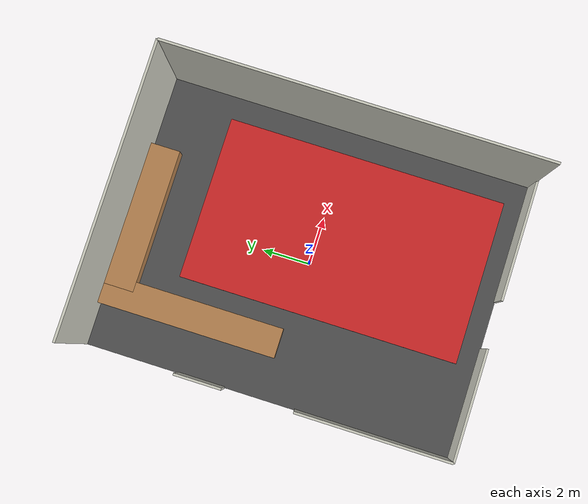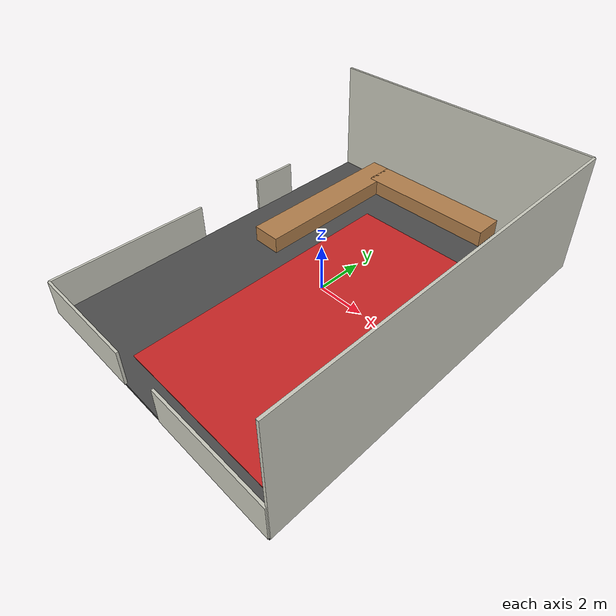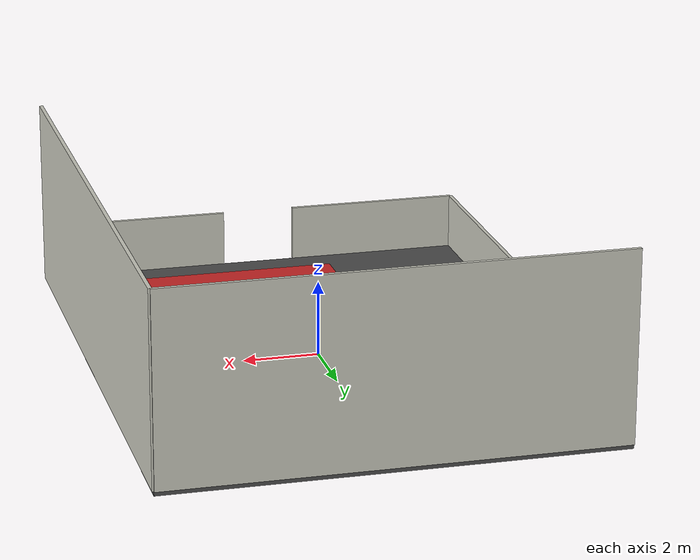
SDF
<?xml version="1.0" ?>
<sdf version="1.4">
  <world name="flightarena">

    <plugin name="gazebo_vehicle_state_plugin" filename="libgazebo_ros_state.so"/>

    <spherical_coordinates>
      <surface_model>EARTH_WGS84</surface_model>
      <latitude_deg>51.4233628</latitude_deg>
      <longitude_deg>-2.671671</longitude_deg>
      <elevation>100.0</elevation>
    </spherical_coordinates>

    <include>
      <uri>model://sun</uri>
    </include>

    <frame name="origin">
      <pose>-0.7 0.5 0 0 0 0</pose>
    </frame>

     <!-- Ground Plane -->

    <!-- Ceiling -->
    <model name="ceiling">
       <pose relative_to="origin">0 0 5.0 0 0 0</pose>
       <static>1</static>
       <link name="body">
         <collision name="geom_1">
           <geometry>
             <box><size>14 20 0.1 0 0 0</size></box>
           </geometry>
         </collision>

         <!-- Keep collision box, but dont show it -->
       </link>
    </model>

    <model name="Floor">
       <pose relative_to="origin">0 0 -0.07 0 0 0</pose>
       <static>1</static>
       <link name="body">
         <collision name="geom_1">
           <geometry>
             <box><size>11.8 15.6 0.05 0 0 0</size></box>
           </geometry>
         </collision>

         <!-- Keep collision box, but dont show it -->
         <visual name="floor">
            <geometry>
             <box><size>11.8 15.6 0.1 0 0 0</size></box>
           </geometry>
           <material>
            <script>
              <uri>file://media/materials/scripts/gazebo.material</uri>
              <name>Gazebo/DarkGrey</name>
            </script>
           </material>
         </visual>
       </link>
    </model>

    <model name="mat">
       <pose relative_to="origin">1.4 -1.0 -0.05 0 0 0</pose>
       <static>1</static>
       <link name="body">
         <collision name="geom_1">
           <geometry>
             <box><size>7.0 12.0 0.05 0 0 0</size></box>
           </geometry>
         </collision>

         <!-- Keep collision box, but dont show it -->
         <visual name="mat">
            <geometry>
             <box><size>7.0 12.0 0.1 0 0 0</size></box>
           </geometry>
           <material>
            <script>
              <uri>file://media/materials/scripts/gazebo.material</uri>
              <name>Gazebo/Red</name>
            </script>
           </material>
         </visual>
       </link>
    </model>

    <!-- North Wall -->
    <model name="north_wall">
       <pose relative_to="origin">5.9 0.0 2.5 0 0 0</pose>
       <static>1</static>
       <link name="body">
         <collision name="geom_1">
           <geometry>
             <box><size>0.1 15.6 5.0 0 0 0</size></box>
           </geometry>
         </collision>

         <visual name="wall_n">
           <geometry>
             <box><size>0.1 15.6 5.0 0 0 0</size></box>
           </geometry>
           <material>
            <script>
              <uri>file://media/materials/scripts/gazebo.material</uri>
              <name>Gazebo/PaintedWall</name>
            </script>
           </material>
         </visual>
       </link>
    </model>

    <!-- West Wall -->
    <model name="west_wall">
       <pose relative_to="origin">0.0 7.8 2.5 0 0 0</pose>
       <static>1</static>
       <link name="body">
         <collision name="geom_1">
           <geometry>
             <box><size>11.8 0.1 5.0 0 0 0</size></box>
           </geometry>
         </collision>

         <visual name="wall_w">
           <geometry>
             <box><size>11.8 0.1 5.0 0 0 0</size></box>
           </geometry>
           <material>
            <script>
              <uri>file://media/materials/scripts/gazebo.material</uri>
              <name>Gazebo/PaintedWall</name>
            </script>
           </material>
         </visual>
       </link>
    </model>

    <!-- East Wall 1 -->
    <model name="east_wall1">
       <pose relative_to="origin">3.35 -7.8 0.75 0 0 0</pose>
       <static>1</static>
       <link name="body">
         <collision name="geom_1">
           <geometry>
             <box><size>5.1 0.1 1.5 0 0 0</size></box>
           </geometry>
         </collision>

         <visual name="wall_e1">
           <geometry>
             <box><size>5.1 0.1 1.5 0 0 0</size></box>
           </geometry>
           <material>
            <script>
              <uri>file://media/materials/scripts/gazebo.material</uri>
              <name>Gazebo/PaintedWall</name>
            </script>
           </material>
         </visual>
       </link>
    </model>

    <!-- East Wall 2 -->
    <model name="east_wall2">
       <pose relative_to="origin">-3.55 -7.8 0.75 0 0 0</pose>
       <static>1</static>
       <link name="body">
         <collision name="geom_1">
           <geometry>
             <box><size>4.7 0.1 1.5 0 0 0</size></box>
           </geometry>
         </collision>

         <visual name="wall_e2">
           <geometry>
             <box><size>4.7 0.1 1.5 0 0 0</size></box>
           </geometry>
           <material>
            <script>
              <uri>file://media/materials/scripts/gazebo.material</uri>
              <name>Gazebo/PaintedWall</name>
            </script>
           </material>
         </visual>
       </link>
    </model>

    <!-- South Wall 1 -->
    <model name="south_wall1">
       <pose relative_to="origin">-5.9 2.8 0.75 0 0 0</pose>
       <static>1</static>
       <link name="body">
         <collision name="geom_1">
           <geometry>
             <box><size>0.1 2.0 1.5 0 0 0</size></box>
           </geometry>
         </collision>

         <visual name="wall_s">
           <geometry>
             <box><size>0.1 2.0 1.5 0 0 0</size></box>
           </geometry>
           <material>
            <script>
              <uri>file://media/materials/scripts/gazebo.material</uri>
              <name>Gazebo/PaintedWall</name>
            </script>
           </material>
         </visual>
       </link>
    </model>

    <!-- South Wall 2 -->
    <model name="south_wall2">
       <pose relative_to="origin">-5.9 -4.5 0.75 0 0 0</pose>
       <static>1</static>
       <link name="body">
         <collision name="geom_1">
           <geometry>
             <box><size>0.1 6.6 1.5 0 0 0</size></box>
           </geometry>
         </collision>

         <visual name="wall_s">
           <geometry>
             <box><size>0.1 6.6 1.5 0 0 0</size></box>
           </geometry>
           <material>
            <script>
              <uri>file://media/materials/scripts/gazebo.material</uri>
              <name>Gazebo/PaintedWall</name>
            </script>
           </material>
         </visual>
       </link>
    </model>

    <!--  Main Desk -->
    <model name="desk_box">
       <pose relative_to="origin">-3.5 4.0 0.35 0 0 0</pose>
       <static>1</static>
       <link name="body">
         <collision name="geom_1">
           <geometry>
             <box><size>1.25 7.6 0.7 0 0 0</size></box>
           </geometry>
         </collision>

         <visual name="wall_s">
           <geometry>
             <box><size>1.25 7.6 0.7 0 0 0</size></box>
           </geometry>
           <material>
            <script>
              <uri>file://media/materials/scripts/gazebo.material</uri>
              <name>Gazebo/Wood</name>
            </script>
           </material>
         </visual>
       </link>
    </model>

    <model name="desk_box2">
       <pose relative_to="origin">-0.25 7.15 0.35 0 0 0</pose>
       <static>1</static>
       <link name="body">
         <collision name="geom_1">
           <geometry>
             <box><size>6.1 1.3 0.7 0 0 0</size></box>
           </geometry>
         </collision>
         <visual name="wall_s">
           <geometry>
             <box><size>6.1 1.3 0.7 0 0 0</size></box>
           </geometry>
           <material>
            <script>
              <uri>file://media/materials/scripts/gazebo.material</uri>
              <name>Gazebo/Wood</name>
            </script>
           </material>
         </visual>
       </link>
    </model>

  </world>
</sdf>
